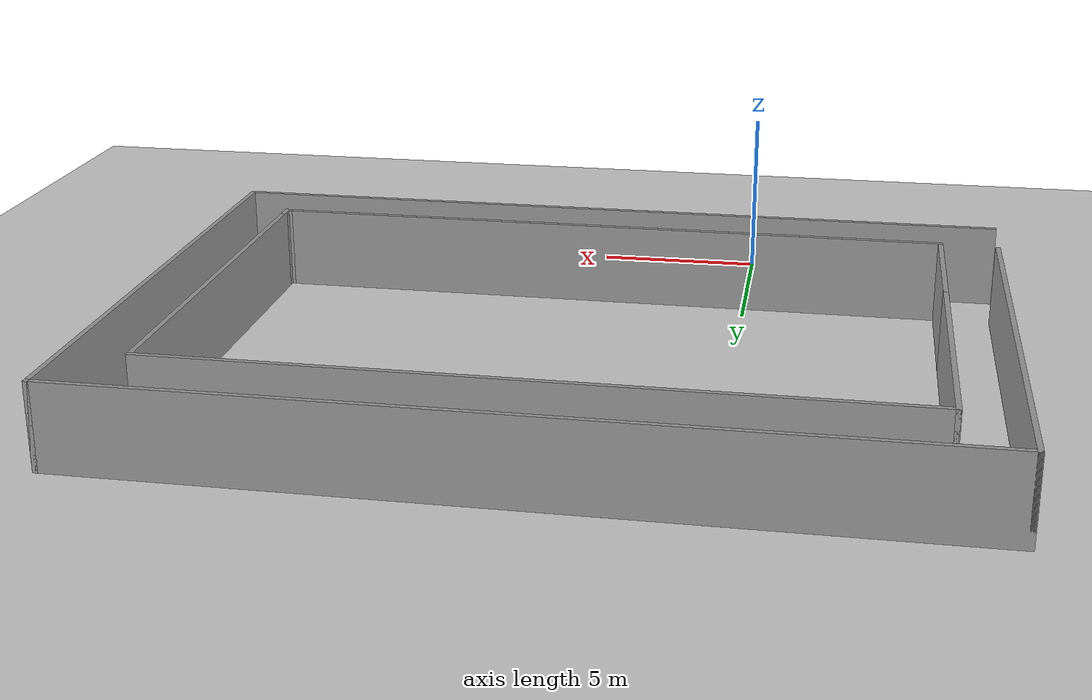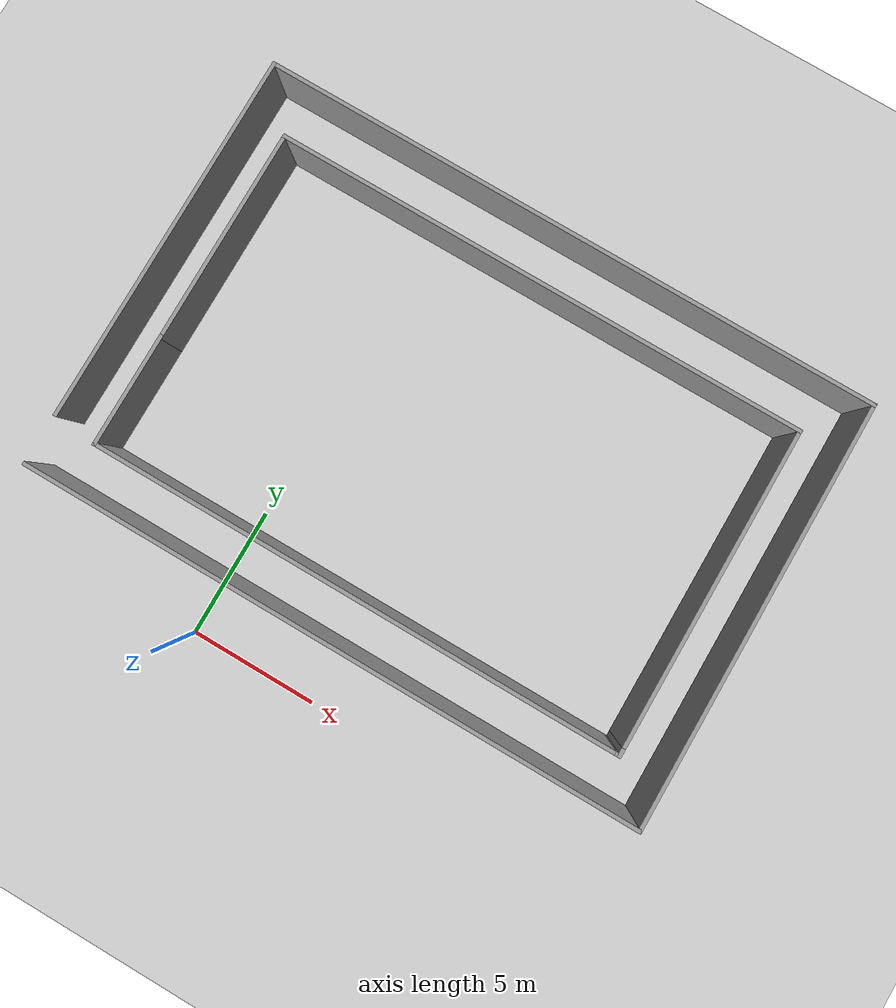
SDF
<?xml version="1.0" ?>
<sdf version='1.5'>

  <world name="default">
    <include>
      <uri>model://sun</uri>
    </include>

    <include>
      <uri>model://ground_plane</uri>
    </include>

    <physics type='ode'>
      <max_step_size>0.01</max_step_size>
      <real_time_factor>1</real_time_factor>
      <real_time_update_rate>100</real_time_update_rate>
      <gravity>0 0 -9.8</gravity>
    </physics>

    <model name='Untitled'>
    <pose frame=''>4.51772 9.59322 0 0 -0 0</pose>
    <link name='Wall_33'>
      <collision name='Wall_33_Collision'>
        <geometry>
          <box>
            <size>20.75 0.15 2.5</size>
          </box>
        </geometry>
        <pose frame=''>0 0 1.25 0 -0 0</pose>
      </collision>
      <visual name='Wall_33_Visual'>
        <pose frame=''>0 0 1.25 0 -0 0</pose>
        <geometry>
          <box>
            <size>20.75 0.15 2.5</size>
          </box>
        </geometry>
        <material>
          <script>
            <uri>file://media/materials/scripts/gazebo.material</uri>
            <name>Gazebo/Grey</name>
          </script>
          <ambient>1 1 1 1</ambient>
        </material>
        <meta>
          <layer>0</layer>
        </meta>
      </visual>
      <pose frame=''>-0.166566 -5.27881 0 0 -0 0</pose>
    </link>
    <link name='Wall_48'>
      <collision name='Wall_48_Collision'>
        <geometry>
          <box>
            <size>4.5 0.15 2.5</size>
          </box>
        </geometry>
        <pose frame=''>0 0 1.25 0 -0 0</pose>
      </collision>
      <visual name='Wall_48_Visual'>
        <pose frame=''>0 0 1.25 0 -0 0</pose>
        <geometry>
          <box>
            <size>4.5 0.15 2.5</size>
          </box>
        </geometry>
        <material>
          <script>
            <uri>file://media/materials/scripts/gazebo.material</uri>
            <name>Gazebo/Grey</name>
          </script>
          <ambient>1 1 1 1</ambient>
        </material>
        <meta>
          <layer>0</layer>
        </meta>
      </visual>
      <pose frame=''>-10.4666 -3.10381 0 0 -0 1.5708</pose>
    </link>
    <link name='Wall_50'>
      <collision name='Wall_50_Collision'>
        <geometry>
          <box>
            <size>8.5 0.15 2.5</size>
          </box>
        </geometry>
        <pose frame=''>0 0 1.25 0 -0 0</pose>
      </collision>
      <visual name='Wall_50_Visual'>
        <pose frame=''>0 0 1.25 0 -0 0</pose>
        <geometry>
          <box>
            <size>8.5 0.15 2.5</size>
          </box>
        </geometry>
        <material>
          <script>
            <uri>file://media/materials/scripts/gazebo.material</uri>
            <name>Gazebo/Grey</name>
          </script>
          <ambient>1 1 1 1</ambient>
        </material>
        <meta>
          <layer>0</layer>
        </meta>
      </visual>
      <pose frame=''>-10.4666 3.24619 0 0 -0 1.5708</pose>
    </link>
    <link name='Wall_51'>
      <collision name='Wall_51_Collision'>
        <geometry>
          <box>
            <size>21 0.15 2.5</size>
          </box>
        </geometry>
        <pose frame=''>0 0 1.25 0 -0 0</pose>
      </collision>
      <visual name='Wall_51_Visual'>
        <pose frame=''>0 0 1.25 0 -0 0</pose>
        <geometry>
          <box>
            <size>21 0.15 2.5</size>
          </box>
        </geometry>
        <material>
          <script>
            <uri>file://media/materials/scripts/gazebo.material</uri>
            <name>Gazebo/Grey</name>
          </script>
          <ambient>1 1 1 1</ambient>
        </material>
        <meta>
          <layer>0</layer>
        </meta>
      </visual>
      <pose frame=''>-0.041566 7.42119 0 0 -0 0</pose>
    </link>
    <link name='Wall_52'>
      <collision name='Wall_52_Collision'>
        <geometry>
          <box>
            <size>12.5 0.15 2.5</size>
          </box>
        </geometry>
        <pose frame=''>0 0 1.25 0 -0 0</pose>
      </collision>
      <visual name='Wall_52_Visual'>
        <pose frame=''>0 0 1.25 0 -0 0</pose>
        <geometry>
          <box>
            <size>12.5 0.15 2.5</size>
          </box>
        </geometry>
        <material>
          <script>
            <uri>file://media/materials/scripts/gazebo.material</uri>
            <name>Gazebo/Grey</name>
          </script>
          <ambient>1 1 1 1</ambient>
        </material>
        <meta>
          <layer>0</layer>
        </meta>
      </visual>
      <pose frame=''>10.3834 1.24619 0 0 -0 -1.5708</pose>
    </link>
    <link name='Wall_53'>
      <collision name='Wall_53_Collision'>
        <geometry>
          <box>
            <size>0.5 0.15 2.5</size>
          </box>
        </geometry>
        <pose frame=''>0 0 1.25 0 -0 0</pose>
      </collision>
      <visual name='Wall_53_Visual'>
        <pose frame=''>0 0 1.25 0 -0 0</pose>
        <geometry>
          <box>
            <size>0.5 0.15 2.5</size>
          </box>
        </geometry>
        <material>
          <script>
            <uri>file://media/materials/scripts/gazebo.material</uri>
            <name>Gazebo/Grey</name>
          </script>
          <ambient>1 1 1 1</ambient>
        </material>
        <meta>
          <layer>0</layer>
        </meta>
      </visual>
      <pose frame=''>10.3834 -5.10381 0 0 -0 -1.5708</pose>
    </link>
    <link name='Wall_54'>
      <collision name='Wall_54_Collision'>
        <geometry>
          <box>
            <size>0.4 0.15 2.5</size>
          </box>
        </geometry>
        <pose frame=''>0 0 1.25 0 -0 0</pose>
      </collision>
      <visual name='Wall_54_Visual'>
        <pose frame=''>0 0 1.25 0 -0 0</pose>
        <geometry>
          <box>
            <size>0.4 0.15 2.5</size>
          </box>
        </geometry>
        <material>
          <script>
            <uri>file://media/materials/scripts/gazebo.material</uri>
            <name>Gazebo/Grey</name>
          </script>
          <ambient>1 1 1 1</ambient>
        </material>
        <meta>
          <layer>0</layer>
        </meta>
      </visual>
      <pose frame=''>10.2584 -5.27881 0 0 -0 -3.14159</pose>
    </link>
    <link name='Wall_56'>
      <collision name='Wall_56_Collision'>
        <geometry>
          <box>
            <size>14.75 0.15 2.5</size>
          </box>
        </geometry>
        <pose frame=''>0 0 1.25 0 -0 0</pose>
      </collision>
      <visual name='Wall_56_Visual'>
        <pose frame=''>0 0 1.25 0 -0 0</pose>
        <geometry>
          <box>
            <size>14.75 0.15 2.5</size>
          </box>
        </geometry>
        <material>
          <script>
            <uri>file://media/materials/scripts/gazebo.material</uri>
            <name>Gazebo/Grey</name>
          </script>
          <ambient>1 1 1 1</ambient>
        </material>
        <meta>
          <layer>0</layer>
        </meta>
      </visual>
      <pose frame=''>-12.175 2.21822 0 0 -0 1.5708</pose>
    </link>
    <link name='Wall_57'>
      <collision name='Wall_57_Collision'>
        <geometry>
          <box>
            <size>24.5 0.15 2.5</size>
          </box>
        </geometry>
        <pose frame=''>0 0 1.25 0 -0 0</pose>
      </collision>
      <visual name='Wall_57_Visual'>
        <pose frame=''>0 0 1.25 0 -0 0</pose>
        <geometry>
          <box>
            <size>24.5 0.15 2.5</size>
          </box>
        </geometry>
        <material>
          <script>
            <uri>file://media/materials/scripts/gazebo.material</uri>
            <name>Gazebo/Grey</name>
          </script>
          <ambient>1 1 1 1</ambient>
        </material>
        <meta>
          <layer>0</layer>
        </meta>
      </visual>
      <pose frame=''>-0 9.51822 0 0 -0 0</pose>
    </link>
    <link name='Wall_58'>
      <collision name='Wall_58_Collision'>
        <geometry>
          <box>
            <size>16.75 0.15 2.5</size>
          </box>
        </geometry>
        <pose frame=''>0 0 1.25 0 -0 0</pose>
      </collision>
      <visual name='Wall_58_Visual'>
        <pose frame=''>0 0 1.25 0 -0 0</pose>
        <geometry>
          <box>
            <size>16.75 0.15 2.5</size>
          </box>
        </geometry>
        <material>
          <script>
            <uri>file://media/materials/scripts/gazebo.material</uri>
            <name>Gazebo/Grey</name>
          </script>
          <ambient>1 1 1 1</ambient>
        </material>
        <meta>
          <layer>0</layer>
        </meta>
      </visual>
      <pose frame=''>12.175 1.21822 0 0 -0 -1.5708</pose>
    </link>
    <link name='Wall_59'>
      <collision name='Wall_59_Collision'>
        <geometry>
          <box>
            <size>24.5 0.15 2.5</size>
          </box>
        </geometry>
        <pose frame=''>0 0 1.25 0 -0 0</pose>
      </collision>
      <visual name='Wall_59_Visual'>
        <pose frame=''>0 0 1.25 0 -0 0</pose>
        <geometry>
          <box>
            <size>24.5 0.15 2.5</size>
          </box>
        </geometry>
        <material>
          <script>
            <uri>file://media/materials/scripts/gazebo.material</uri>
            <name>Gazebo/Grey</name>
          </script>
          <ambient>1 1 1 1</ambient>
        </material>
        <meta>
          <layer>0</layer>
        </meta>
      </visual>
      <pose frame=''>-0 -7.08178 0 0 -0 3.14159</pose>
    </link>
    <static>1</static>
  </model>

    </world>

</sdf>
